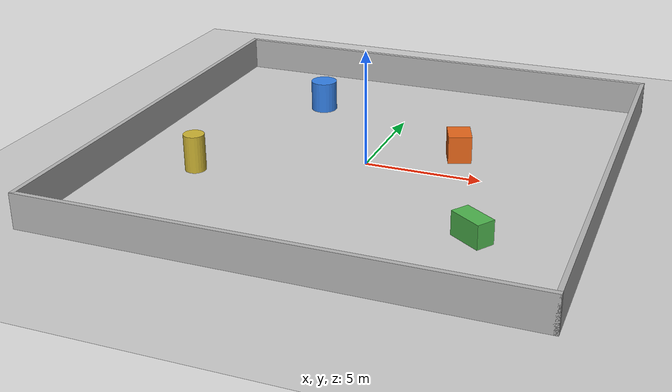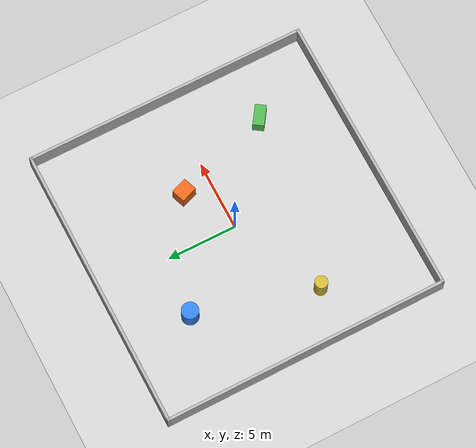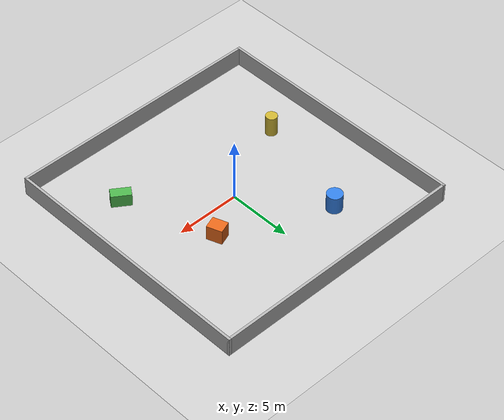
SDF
<?xml version="1.0" ?>
<sdf version="1.6">
  <world name="mow_field">

    <!-- 標準光源與地面 -->
    <include>
      <uri>model://sun</uri>
    </include>

    <include>
      <uri>model://ground_plane</uri>
    </include>

    <!-- 物理設定 -->
    <physics name="default_physics" default="true" type="ode">
      <max_step_size>0.001</max_step_size>
      <real_time_factor>1.0</real_time_factor>
      <real_time_update_rate>1000</real_time_update_rate>
      <!-- ODE 求解器疊代次數：預設 50 時零指令 45 s 會自己滑 0.433 m，200 剩 0.015 m (2026-10-05 新電腦實測) -->
      <ode><solver><iters>200</iters></solver></ode>
    </physics>

    <!--
      四面圍牆：圍出 20m x 20m 的封閉區域 (內側面位於 x/y = +-10)
      牆高 1.5m、厚 0.2m。
      牆高必須高於雷達的安裝高度 (約 0.88m 離地)，
      否則雷達掃不到牆面，SLAM 會建不出封閉地圖。
    -->
    <model name="wall_north">
      <static>true</static>
      <pose>0 10.1 0.75 0 0 0</pose>
      <link name="link">
        <collision name="collision">
          <geometry>
            <box><size>20.4 0.2 1.5</size></box>
          </geometry>
        </collision>
        <visual name="visual">
          <geometry>
            <box><size>20.4 0.2 1.5</size></box>
          </geometry>
          <material>
            <ambient>0.6 0.6 0.6 1</ambient>
            <diffuse>0.7 0.7 0.7 1</diffuse>
          </material>
        </visual>
      </link>
    </model>

    <model name="wall_south">
      <static>true</static>
      <pose>0 -10.1 0.75 0 0 0</pose>
      <link name="link">
        <collision name="collision">
          <geometry>
            <box><size>20.4 0.2 1.5</size></box>
          </geometry>
        </collision>
        <visual name="visual">
          <geometry>
            <box><size>20.4 0.2 1.5</size></box>
          </geometry>
          <material>
            <ambient>0.6 0.6 0.6 1</ambient>
            <diffuse>0.7 0.7 0.7 1</diffuse>
          </material>
        </visual>
      </link>
    </model>

    <model name="wall_east">
      <static>true</static>
      <pose>10.1 0 0.75 0 0 0</pose>
      <link name="link">
        <collision name="collision">
          <geometry>
            <box><size>0.2 20.4 1.5</size></box>
          </geometry>
        </collision>
        <visual name="visual">
          <geometry>
            <box><size>0.2 20.4 1.5</size></box>
          </geometry>
          <material>
            <ambient>0.6 0.6 0.6 1</ambient>
            <diffuse>0.7 0.7 0.7 1</diffuse>
          </material>
        </visual>
      </link>
    </model>

    <model name="wall_west">
      <static>true</static>
      <pose>-10.1 0 0.75 0 0 0</pose>
      <link name="link">
        <collision name="collision">
          <geometry>
            <box><size>0.2 20.4 1.5</size></box>
          </geometry>
        </collision>
        <visual name="visual">
          <geometry>
            <box><size>0.2 20.4 1.5</size></box>
          </geometry>
          <material>
            <ambient>0.6 0.6 0.6 1</ambient>
            <diffuse>0.7 0.7 0.7 1</diffuse>
          </material>
        </visual>
      </link>
    </model>

    <!--
      區域內的障礙物：位置刻意不對稱、不共線，
      提供雷達 scan matching 需要的特徵點，
      避免四面光滑直牆造成 SLAM 定位漂移。
    -->
    <model name="obstacle_box_a">
      <static>true</static>
      <pose>3.5 2.0 0.6 0 0 0.35</pose>
      <link name="link">
        <collision name="collision">
          <geometry>
            <box><size>1.0 1.2 1.2</size></box>
          </geometry>
        </collision>
        <visual name="visual">
          <geometry>
            <box><size>1.0 1.2 1.2</size></box>
          </geometry>
          <material>
            <ambient>0.8 0.3 0.1 1</ambient>
            <diffuse>0.9 0.4 0.1 1</diffuse>
          </material>
        </visual>
      </link>
    </model>

    <model name="obstacle_cylinder_a">
      <static>true</static>
      <pose>-4.2 5.5 0.7 0 0 0</pose>
      <link name="link">
        <collision name="collision">
          <geometry>
            <cylinder><radius>0.6</radius><length>1.4</length></cylinder>
          </geometry>
        </collision>
        <visual name="visual">
          <geometry>
            <cylinder><radius>0.6</radius><length>1.4</length></cylinder>
          </geometry>
          <material>
            <ambient>0.1 0.4 0.8 1</ambient>
            <diffuse>0.2 0.5 0.9 1</diffuse>
          </material>
        </visual>
      </link>
    </model>

    <model name="obstacle_box_b">
      <static>true</static>
      <pose>6.0 -5.0 0.5 0 0 -0.6</pose>
      <link name="link">
        <collision name="collision">
          <geometry>
            <box><size>1.5 0.8 1.0</size></box>
          </geometry>
        </collision>
        <visual name="visual">
          <geometry>
            <box><size>1.5 0.8 1.0</size></box>
          </geometry>
          <material>
            <ambient>0.2 0.6 0.2 1</ambient>
            <diffuse>0.3 0.7 0.3 1</diffuse>
          </material>
        </visual>
      </link>
    </model>

    <model name="obstacle_cylinder_b">
      <static>true</static>
      <pose>-6.5 -3.0 0.8 0 0 0</pose>
      <link name="link">
        <collision name="collision">
          <geometry>
            <cylinder><radius>0.45</radius><length>1.6</length></cylinder>
          </geometry>
        </collision>
        <visual name="visual">
          <geometry>
            <cylinder><radius>0.45</radius><length>1.6</length></cylinder>
          </geometry>
          <material>
            <ambient>0.6 0.5 0.1 1</ambient>
            <diffuse>0.8 0.7 0.2 1</diffuse>
          </material>
        </visual>
      </link>
    </model>

  </world>
</sdf>
